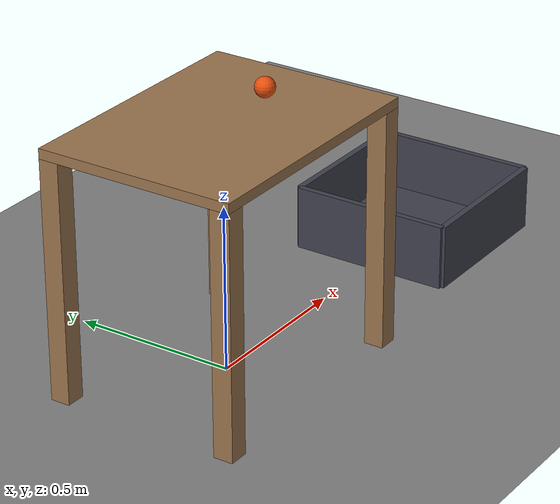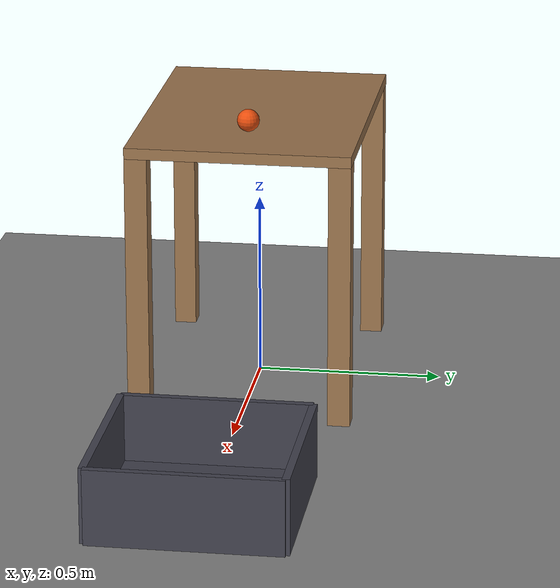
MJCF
<mujoco model="ball_rolls_off_a_table_into_a_bucket">
  <compiler angle="radian"/>
  <option timestep="0.002"/>
  <worldbody>
    <geom name="floor" type="plane" size="8 8 0.1" friction="0.8 0.005 0.002"/>
    <body name="table">
      <geom name="table_top" type="box" pos="0 0 0.735" size="0.4 0.3 0.015" friction="0.8 0.001 0.0005" rgba="0.6 0.45 0.3 1"/>
      <geom name="table_near_left_leg" type="box" pos="-0.37 0.27 0.36" size="0.03 0.03 0.36" friction="0.8 0.001 0.0005" rgba="0.6 0.45 0.3 1"/>
      <geom name="table_near_right_leg" type="box" pos="-0.37 -0.27 0.36" size="0.03 0.03 0.36" friction="0.8 0.001 0.0005" rgba="0.6 0.45 0.3 1"/>
      <geom name="table_far_left_leg" type="box" pos="0.37 0.27 0.36" size="0.03 0.03 0.36" friction="0.8 0.001 0.0005" rgba="0.6 0.45 0.3 1"/>
      <geom name="table_far_right_leg" type="box" pos="0.37 -0.27 0.36" size="0.03 0.03 0.36" friction="0.8 0.001 0.0005" rgba="0.6 0.45 0.3 1"/>
    </body>
    <body name="bucket">
      <geom name="bucket_base" type="box" pos="1 0 0.01" size="0.25 0.25 0.01" friction="0.9 0.01 0.01" solref="0.01 1" rgba="0.25 0.25 0.3 1"/>
      <geom name="bucket_near_wall" type="box" pos="0.75 0 0.1" size="0.01 0.25 0.1" friction="0.9 0.01 0.01" solref="0.01 1" rgba="0.25 0.25 0.3 1"/>
      <geom name="bucket_far_wall" type="box" pos="1.25 0 0.1" size="0.01 0.25 0.1" friction="0.9 0.01 0.01" solref="0.01 1" rgba="0.25 0.25 0.3 1"/>
      <geom name="bucket_left_wall" type="box" pos="1 0.25 0.1" size="0.25 0.01 0.1" friction="0.9 0.01 0.01" solref="0.01 1" rgba="0.25 0.25 0.3 1"/>
      <geom name="bucket_right_wall" type="box" pos="1 -0.25 0.1" size="0.25 0.01 0.1" friction="0.9 0.01 0.01" solref="0.01 1" rgba="0.25 0.25 0.3 1"/>
    </body>
    <body name="ball" pos="0.2 0 0.78">
      <freejoint/>
      <geom name="ball" type="sphere" pos="0 0 0" size="0.03" mass="0.1" condim="6" friction="0.8 0.005 0.001" solref="0.01 1" rgba="0.9 0.3 0.05 1"/>
    </body>
  </worldbody>
  <keyframe>
    <key name="start" qpos="0.2 0 0.78 1 0 0 0" qvel="1.6 0 0 0 53 0"/>
  </keyframe>
</mujoco>
